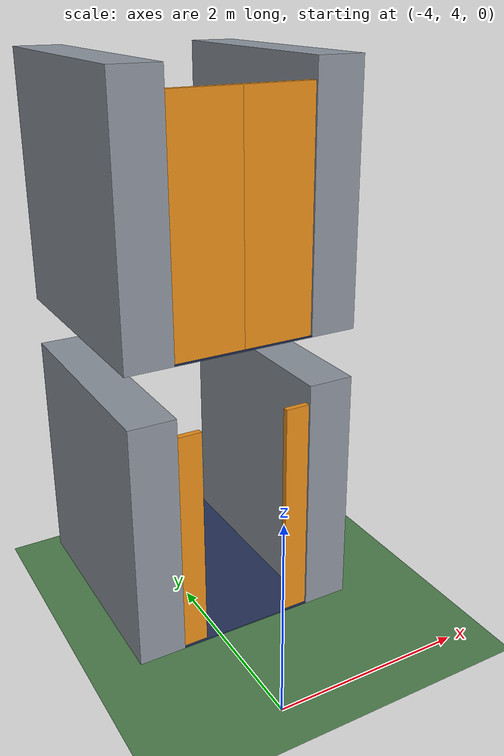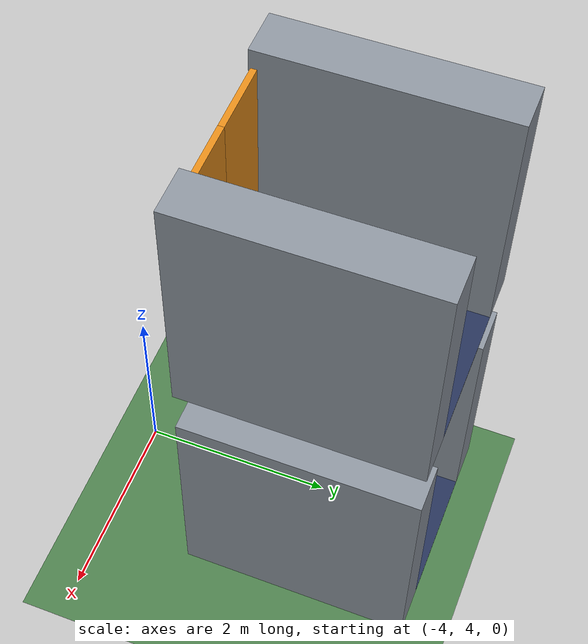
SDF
<sdf version="1.5">
 <world name="default">
  <plugin name="gazebo_ros_state" filename="libgazebo_ros_state.so">
   <ros><namespace>/</namespace></ros>
   <update_rate>1.0</update_rate>
  </plugin>
  <light name="sun" type="directional">
   <pose>0 0 10 0 -0 0</pose>
   <diffuse>0.8 0.8 0.8 1</diffuse>
   <specular>0.2 0.2 0.2 1</specular>
   <attenuation>
    <range>1000</range>
    <constant>0.9</constant>
    <linear>0.01</linear>
    <quadratic>0.001</quadratic>
   </attenuation>
   <direction>0 0.5 -0.9</direction>
  </light>
  <light name="point_light" type="point">
   <pose>0 -0.377195 6.59868 0 -0 0</pose>
   <diffuse>0.784314 0.784314 0.784314 1</diffuse>
   <specular>0.0980392 0.0980392 0.0980392 1</specular>
   <attenuation>
    <range>50</range>
    <constant>0.8</constant>
    <linear>0</linear>
    <quadratic>0.001</quadratic>
   </attenuation>
   <cast_shadows>0</cast_shadows>
   <direction>0 0 -1</direction>
  </light>
  <model name="ground_plane">
   <static>true</static>
   <link name="link">
    <collision name="collision">
     <geometry><plane><normal>0 0 1</normal><size>100 100</size></plane></geometry>
    </collision>
    <visual name="visual">
     <geometry><plane><normal>0 0 1</normal><size>100 100</size></plane></geometry>
     <material>
      <ambient>0.3 0.5 0.3 1</ambient>
      <diffuse>0.3 0.5 0.3 1</diffuse>
      <specular>0.1 0.1 0.1 1</specular>
     </material>
    </visual>
   </link>
  </model>
  <model name="elevator_f1">
   <static>true</static>
   <link name="link">
    <collision name="left_wall_c">
     <pose>-4.735 6.185 1.440 0 0 0</pose>
     <geometry><box><size>0.470 2.370 2.5</size></box></geometry>
    </collision>
    <visual name="left_wall_v">
     <pose>-4.735 6.185 1.440 0 0 0</pose>
     <geometry><box><size>0.470 2.370 2.5</size></box></geometry>
     <material><ambient>0.55 0.58 0.62 1</ambient><diffuse>0.55 0.58 0.62 1</diffuse></material>
    </visual>
    <collision name="right_wall_c">
     <pose>-2.865 6.185 1.440 0 0 0</pose>
     <geometry><box><size>0.470 2.370 2.5</size></box></geometry>
    </collision>
    <visual name="right_wall_v">
     <pose>-2.865 6.185 1.440 0 0 0</pose>
     <geometry><box><size>0.470 2.370 2.5</size></box></geometry>
     <material><ambient>0.55 0.58 0.62 1</ambient><diffuse>0.55 0.58 0.62 1</diffuse></material>
    </visual>
    <visual name="floor_pad">
     <pose>-3.8 6.185 0.196 0 0 0</pose>
     <geometry><box><size>1.4 2.370 0.012</size></box></geometry>
     <material><ambient>0.15 0.2 0.35 1</ambient><diffuse>0.15 0.2 0.35 1</diffuse></material>
    </visual>
   </link>
  </model>
  <model name="elevator_f2">
   <static>true</static>
   <link name="link">
    <collision name="left_wall_c">
     <pose>-4.735 6.185 4.440 0 0 0</pose>
     <geometry><box><size>0.470 2.370 2.5</size></box></geometry>
    </collision>
    <visual name="left_wall_v">
     <pose>-4.735 6.185 4.440 0 0 0</pose>
     <geometry><box><size>0.470 2.370 2.5</size></box></geometry>
     <material><ambient>0.55 0.58 0.62 1</ambient><diffuse>0.55 0.58 0.62 1</diffuse></material>
    </visual>
    <collision name="right_wall_c">
     <pose>-2.865 6.185 4.440 0 0 0</pose>
     <geometry><box><size>0.470 2.370 2.5</size></box></geometry>
    </collision>
    <visual name="right_wall_v">
     <pose>-2.865 6.185 4.440 0 0 0</pose>
     <geometry><box><size>0.470 2.370 2.5</size></box></geometry>
     <material><ambient>0.55 0.58 0.62 1</ambient><diffuse>0.55 0.58 0.62 1</diffuse></material>
    </visual>
    <visual name="floor_pad">
     <pose>-3.8 6.185 3.196 0 0 0</pose>
     <geometry><box><size>1.4 2.370 0.012</size></box></geometry>
     <material><ambient>0.15 0.2 0.35 1</ambient><diffuse>0.15 0.2 0.35 1</diffuse></material>
    </visual>
   </link>
  </model>
  <model name="elev_door_f1_L">
   <pose>-4.6000000000000005 5.05 1.340 0 0 0</pose>
   <link name="link">
    <kinematic>true</kinematic>
    <gravity>false</gravity>
    <inertial>
     <mass>5</mass>
     <inertia><ixx>1</ixx><iyy>1</iyy><izz>1</izz><ixy>0</ixy><ixz>0</ixz><iyz>0</iyz></inertia>
    </inertial>
    <collision name="c"><geometry><box><size>0.7 0.06 2.3</size></box></geometry></collision>
    <visual name="v">
     <geometry><box><size>0.7 0.06 2.3</size></box></geometry>
     <material><ambient>0.9 0.55 0.1 1</ambient><diffuse>0.9 0.55 0.1 1</diffuse></material>
    </visual>
   </link>
  </model>
  <model name="elev_door_f1_R">
   <pose>-3.0 5.05 1.340 0 0 0</pose>
   <link name="link">
    <kinematic>true</kinematic>
    <gravity>false</gravity>
    <inertial>
     <mass>5</mass>
     <inertia><ixx>1</ixx><iyy>1</iyy><izz>1</izz><ixy>0</ixy><ixz>0</ixz><iyz>0</iyz></inertia>
    </inertial>
    <collision name="c"><geometry><box><size>0.7 0.06 2.3</size></box></geometry></collision>
    <visual name="v">
     <geometry><box><size>0.7 0.06 2.3</size></box></geometry>
     <material><ambient>0.9 0.55 0.1 1</ambient><diffuse>0.9 0.55 0.1 1</diffuse></material>
    </visual>
   </link>
  </model>
  <model name="elev_door_f2_L">
   <pose>-4.15 5.05 4.340 0 0 0</pose>
   <link name="link">
    <kinematic>true</kinematic>
    <gravity>false</gravity>
    <inertial>
     <mass>5</mass>
     <inertia><ixx>1</ixx><iyy>1</iyy><izz>1</izz><ixy>0</ixy><ixz>0</ixz><iyz>0</iyz></inertia>
    </inertial>
    <collision name="c"><geometry><box><size>0.7 0.06 2.3</size></box></geometry></collision>
    <visual name="v">
     <geometry><box><size>0.7 0.06 2.3</size></box></geometry>
     <material><ambient>0.9 0.55 0.1 1</ambient><diffuse>0.9 0.55 0.1 1</diffuse></material>
    </visual>
   </link>
  </model>
  <model name="elev_door_f2_R">
   <pose>-3.45 5.05 4.340 0 0 0</pose>
   <link name="link">
    <kinematic>true</kinematic>
    <gravity>false</gravity>
    <inertial>
     <mass>5</mass>
     <inertia><ixx>1</ixx><iyy>1</iyy><izz>1</izz><ixy>0</ixy><ixz>0</ixz><iyz>0</iyz></inertia>
    </inertial>
    <collision name="c"><geometry><box><size>0.7 0.06 2.3</size></box></geometry></collision>
    <visual name="v">
     <geometry><box><size>0.7 0.06 2.3</size></box></geometry>
     <material><ambient>0.9 0.55 0.1 1</ambient><diffuse>0.9 0.55 0.1 1</diffuse></material>
    </visual>
   </link>
  </model>
 </world>
</sdf>
